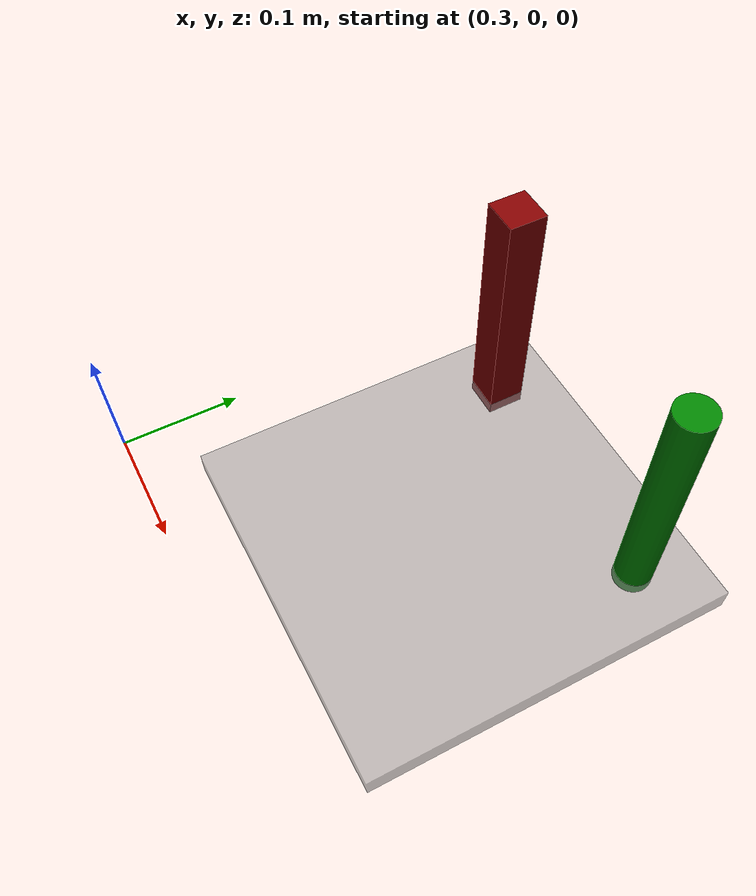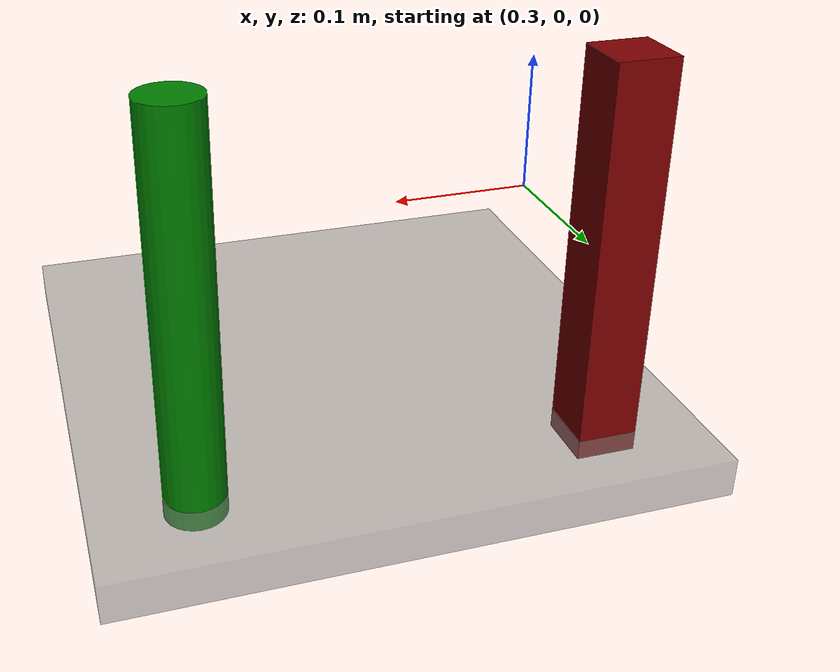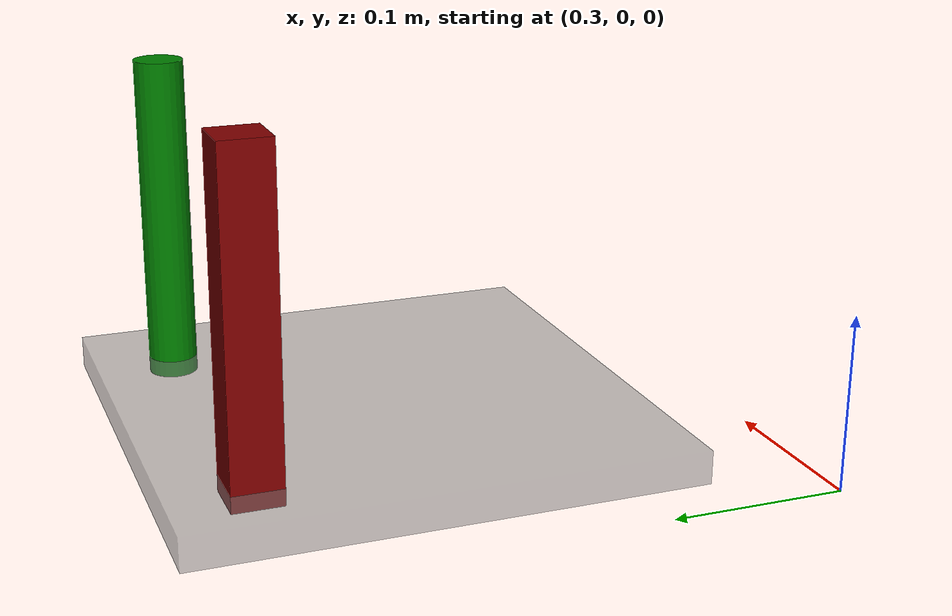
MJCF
<mujoco>
    <worldbody>
        <body name="platform" pos="0.5 0.2 0.0" quat="1 0 0 0">
            <geom pos="0 0 0" size="0.15 0.15 0.01" rgba="0.5 0.5 0.5 0.5" type="box" mass="10" friction="0.3 0.001 0.0001" priority="1"/>
            <geom pos="0.1 0.1 0.1" size="0.015 0.1" rgba="0 0.5 0 1.0" type="cylinder" mass="0.001"/>
            <geom pos="-0.1 0.1 0.1" size="0.015 0.015 0.1" rgba="0.5 0 0 1.0" type="box" mass="0.001"/>
        </body>
    </worldbody>
</mujoco>
